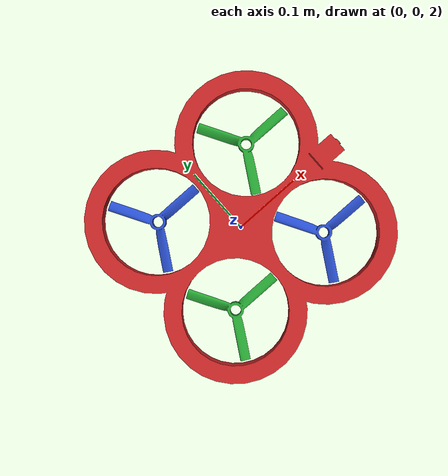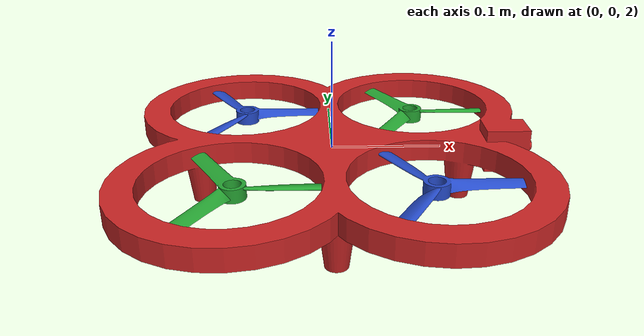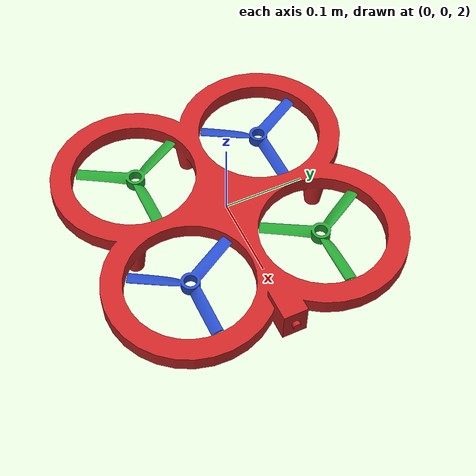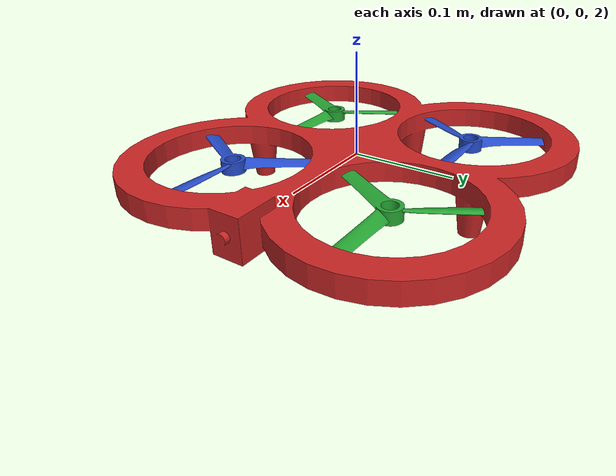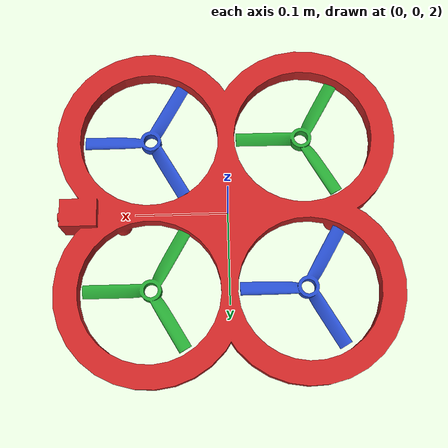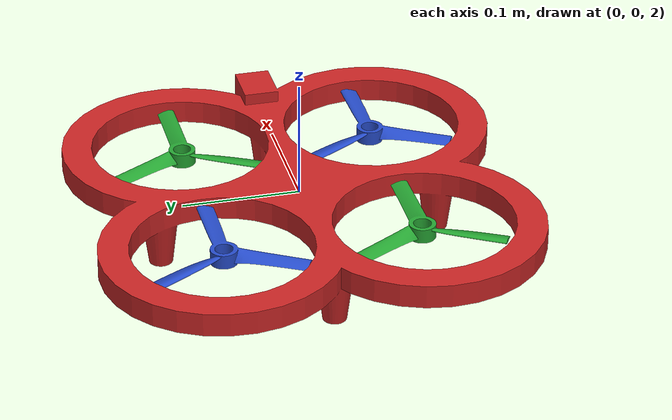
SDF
<?xml version="1.0" ?>
<sdf version="1.8">
  <world name="drone_world">
    <plugin
      filename="ignition-gazebo-physics-system"
      name="ignition::gazebo::systems::Physics">
      <max_step_size>0.02</max_step_size>
      <real_time_factor>10</real_time_factor>
    </plugin>
    <plugin
      filename="gz-sim-scene-broadcaster-system"
      name="gz::sim::systems::SceneBroadcaster">
    </plugin>
    <plugin
      filename="libignition-gazebo-sensors-system"
      name="ignition::gazebo::systems::Sensors">
      <render_engine>ogre2</render_engine>
    </plugin>
    <plugin
      filename="libignition-gazebo-user-commands-system"
      name="ignition::gazebo::systems::UserCommands">
    </plugin>

    <scene>
      <sky></sky>
      <grid>false</grid>
      <ambient>1.0 1.0 1.0</ambient>
      <background>0.8 0.8 0.8</background>
    </scene>

    <light name="sun" type="directional">
      <cast_shadows>true</cast_shadows>
      <pose>0 0 10 0 0 0</pose>
      <diffuse>0.8 0.8 0.8 1</diffuse>
      <specular>0.2 0.2 0.2 1</specular>
      <attenuation>
        <range>1000</range>
        <constant>0.9</constant>
        <linear>0.01</linear>
        <quadratic>0.001</quadratic>
      </attenuation>
      <direction>-0.5 0.1 -0.9</direction>
    </light>

    <model name="ground_plane">
      <static>true</static>
      <link name="link">
        <collision name="collision">
          <geometry>
            <plane>
              <normal>0 0 1</normal>
              <size>100 100</size>
            </plane>
          </geometry>
        </collision>
        <visual name="visual">
          <geometry>
            <plane>
              <normal>0 0 1</normal>
              <size>100 100</size>
            </plane>
          </geometry>
          <material>
            <ambient>0.8 0.8 0.8 1</ambient>
            <diffuse>0.8 0.8 0.8 1</diffuse>
            <specular>0.8 0.8 0.8 1</specular>
          </material>
        </visual>
      </link>
    </model>

    <model name="drone_model">
      <self_collide>true</self_collide>
      <pose>0 0 2 0 0 0</pose>
      <include merge="true">
        <uri>package://d1/models/drone_model</uri>
      </include>

      <plugin filename="libignition-gazebo-imu-system.so"
          name="ignition::gazebo::systems::Imu">
      </plugin>

      <plugin
        filename="libignition-gazebo-joint-state-publisher-system"
        name="ignition::gazebo::systems::JointStatePublisher">
      </plugin>

      <plugin
        filename="libignition-gazebo-pose-publisher-system"
        name="ignition::gazebo::systems::PosePublisher">
        <publish_link_pose>true</publish_link_pose>
        <use_pose_vector_msg>true</use_pose_vector_msg>
        <static_publisher>true</static_publisher>
        <static_update_frequency>1</static_update_frequency>
      </plugin>

      <plugin
        filename="libignition-gazebo-odometry-publisher-system"
        name="ignition::gazebo::systems::OdometryPublisher">
        <odom_frame>drone/odom</odom_frame>
        <robot_base_frame>drone</robot_base_frame>
      </plugin>

      <plugin filename="libignition-gazebo-multicopter-motor-model-system.so"
        name="ignition::gazebo::systems::MulticopterMotorModel">
        <robotNamespace>model/drone_model</robotNamespace>
        <jointName>prop0_joint</jointName>
        <linkName>prop0</linkName>
        <turningDirection>cw</turningDirection>
        <commandSubTopic>command/motor_speed</commandSubTopic>
        <motorNumber>0</motorNumber>
        <motorSpeedPubTopic>motor_speed/0</motorSpeedPubTopic>
        <motorType>velocity</motorType>
      </plugin>

      <plugin filename="libignition-gazebo-multicopter-motor-model-system.so"
        name="ignition::gazebo::systems::MulticopterMotorModel">
        <robotNamespace>model/drone_model</robotNamespace>
        <jointName>prop1_joint</jointName>
        <linkName>prop1</linkName>
        <turningDirection>ccw</turningDirection>
        <commandSubTopic>command/motor_speed</commandSubTopic>
        <motorNumber>1</motorNumber>
        <motorSpeedPubTopic>motor_speed/1</motorSpeedPubTopic>
        <motorType>velocity</motorType>
      </plugin>

      <plugin filename="libignition-gazebo-multicopter-motor-model-system.so"
        name="ignition::gazebo::systems::MulticopterMotorModel">
        <robotNamespace>model/drone_model</robotNamespace>
        <jointName>prop2_joint</jointName>
        <linkName>prop2</linkName>
        <turningDirection>cw</turningDirection>
        <commandSubTopic>command/motor_speed</commandSubTopic>
        <motorNumber>2</motorNumber>
        <motorSpeedPubTopic>motor_speed/2</motorSpeedPubTopic>
        <motorType>velocity</motorType>
      </plugin>

      <plugin filename="libignition-gazebo-multicopter-motor-model-system.so"
        name="ignition::gazebo::systems::MulticopterMotorModel">
        <robotNamespace>model/drone_model</robotNamespace>
        <jointName>prop3_joint</jointName>
        <linkName>prop3</linkName>
        <turningDirection>ccw</turningDirection>
        <commandSubTopic>command/motor_speed</commandSubTopic>
        <motorNumber>3</motorNumber>
        <motorSpeedPubTopic>motor_speed/3</motorSpeedPubTopic>
        <motorType>velocity</motorType>
      </plugin>

      <plugin
        filename="libignition-gazebo-multicopter-control-system.so"
        name="ignition::gazebo::systems::MulticopterVelocityControl">
        <robotNamespace>model/drone_model</robotNamespace>
        <commandSubTopic>cmd_vel</commandSubTopic>
        <motorControlPubTopic>command/motor_speed</motorControlPubTopic>
        <enableSubTopic>velocity_controller/enable</enableSubTopic>
        <comLinkName>frame</comLinkName>
        <velocityGain>2.7 2.7 2.7</velocityGain>
        <attitudeGain>2 3 0.15</attitudeGain>
        <angularRateGain>0.7 0.7 0.7</angularRateGain>
        <maximumLinearAcceleration>1 1 2</maximumLinearAcceleration>
        <maximumLinearVelocity>5 5 5</maximumLinearVelocity>
        <maximumAngularVelocity>3 3 3</maximumAngularVelocity>
        <linearVelocityNoiseMean>0 0 0</linearVelocityNoiseMean>
        <linearVelocityNoiseStdDev>0.1105 0.1261 0.0947</linearVelocityNoiseStdDev>
        <angularVelocityNoiseMean>0 0 0</angularVelocityNoiseMean>
        <angularVelocityNoiseStdDev>0.004 0.004 0.004</angularVelocityNoiseStdDev>
        <rotorConfiguration>
          <rotor>
            <jointName>prop0_joint</jointName>
            <forceConstant>8.54858e-06</forceConstant>
            <momentConstant>0.016</momentConstant>
            <direction>1</direction>
          </rotor>

          <!-- rotors 1 and 2 were direction -1 -->
          <rotor>
            <jointName>prop1_joint</jointName>
            <forceConstant>8.54858e-06</forceConstant>
            <momentConstant>0.016</momentConstant>
            <direction>1</direction>
          </rotor>
          <rotor>
            <jointName>prop2_joint</jointName>
            <forceConstant>8.54858e-06</forceConstant>
            <momentConstant>0.016</momentConstant>
            <direction>1</direction>
          </rotor>
          <rotor>
            <jointName>prop3_joint</jointName>
            <forceConstant>8.54858e-06</forceConstant>
            <momentConstant>0.016</momentConstant>
            <direction>1</direction>
          </rotor>
        </rotorConfiguration>
      </plugin>
    </model>

  </world>
</sdf>

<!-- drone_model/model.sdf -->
<sdf version='1.9'>
    <model name='drone_model'>
        <pose>0 0 0 0 0 0</pose>
        <static>false</static>

        <link name="base_link">
            <must_be_base_link>true</must_be_base_link>
            <self_collide>false</self_collide>
        </link>

        <joint name="base_joint" type="fixed">
            <origin xyz="0 0 0" rpy="0 0 0" />
            <parent>base_link</parent>
            <child>frame</child>
            <pose>0 0 0 0 0 0</pose>
        </joint>

        <link name="frame">
            <self_collide>false</self_collide>
            <pose>0 0 0 0 0 0</pose>
            <inertial>
                <mass>0.5</mass>
                <inertia>
                    <ixx>1.26297701e-05</ixx>
                    <ixy>-5.18156941e-17</ixy>
                    <ixz>-1.37610761e-08</ixz>
                    <iyy>1.36983673e-05</iyy>
                    <iyz>3.96565331e-15</iyz>
                    <izz>2.61209100e-05</izz>
                </inertia>
            </inertial>
            <collision name="frame_collision">
                <max_contacts>4</max_contacts>
                <geometry>
                    <mesh>
                        <scale>0.001 0.001 0.001</scale>
                        <uri>package://d1/meshes/body.stl</uri>
                    </mesh>
                </geometry>
                <surface>
                    <friction>
                        <ode>
                            <mu>1</mu>
                            <mu2>1</mu2>
                        </ode>
                    </friction>
                    <contact>
                        <colliide_without_contact>true</colliide_without_contact>
                    </contact>
                </surface>
            </collision>
            <visual name="frame_visual">
                <cast_shadows>false</cast_shadows>
                <geometry>
                    <mesh>
                        <scale>0.001 0.001 0.001</scale>
                        <uri>package://d1/meshes/body.stl</uri>
                    </mesh>
                </geometry>
                <material>
                    <diffuse>1 0 0 1</diffuse>
                    <script>
                        <name>Gazebo/Red</name>
                        <uri>file://media/materials/scripts/gazebo.material</uri>
                    </script>
                </material>
            </visual>

            <sensor name="camera" type="camera">
                <pose>0.15 0 0 0 0 0</pose>
                <always_on>1</always_on>
                <update_rate>20</update_rate>
                <camera name="camera">
                    <horizontal_fov>1.0472</horizontal_fov>
                    <lens>
                        <intrinsics>
                            <fx>1108.5</fx>
                            <fy>1108.5</fy>
                            <cx>640.5</cx>
                            <cy>480.5</cy>
                            <s>0</s>
                        </intrinsics>
                    </lens>
                    <distortion>
                        <k1>0.0</k1>
                        <k2>0.0</k2>
                        <k3>0.0</k3>
                        <p1>0.0</p1>
                        <p2>0.0</p2>
                        <center>0.5 0.5</center>
                    </distortion>
                    <image>
                        <width>1260</width>
                        <height>720</height>
                        <format>R8G8B8</format>
                    </image>
                    <clip>
                        <near>0.01</near>
                        <far>300</far>
                    </clip>
                    <noise>
                        <type>gaussian</type>
                        <mean>0</mean>
                        <stddev>0.007</stddev>
                    </noise>
                </camera>
            </sensor>

            <sensor name="imu_sensor" type="imu">
                <always_on>1</always_on>
                <update_rate>10</update_rate>
                <visualize>true</visualize>
                <topic>model/drone_model/imu</topic>
            </sensor>
        </link>

        <link name="prop0">
            <pose>0.0835 0.0835 0 0 0 0</pose>
            <inertial>
                <mass>0.15</mass>
                <inertia>
                    <ixx>2.28759986e-10</ixx>
                    <ixy>-2.13167562e-18</ixy>
                    <ixz>-1.90163023e-19</ixz>
                    <iyy>2.28759967e-10</iyy>
                    <iyz>1.98727288e-19</iyz>
                    <izz>4.52746349e-10</izz>
                </inertia>
            </inertial>
            <collision name="prop0_collision">
                <max_contacts>4</max_contacts>
                <geometry>
                    <mesh>
                        <scale>0.0019 0.0019 0.0019</scale>
                        <uri>package://d1/meshes/prop_cw.stl</uri>
                    </mesh>
                </geometry>
                <surface>
                    <friction>
                        <ode>
                            <mu>1</mu>
                            <mu2>1</mu2>
                        </ode>
                    </friction>
                    <contact>
                        <colliide_without_contact>true</colliide_without_contact>
                    </contact>
                </surface>
            </collision>
            <visual name="prop0_visual">
                <cast_shadows>false</cast_shadows>
                <geometry>
                    <mesh>
                        <scale>0.0019 0.0019 0.0019</scale>
                        <uri>package://d1/meshes/prop_cw.stl</uri>
                    </mesh>
                </geometry>
                <material>
                    <diffuse>0 1 0 1</diffuse>
                    <script>
                        <name>Gazebo/Green</name>
                        <uri>file://media/materials/scripts/gazebo.material</uri>
                    </script>
                </material>
            </visual>
        </link>

        <link name="prop1">
            <pose>0.0835 -0.0835 0 0 0 0</pose>
            <inertial>
                <mass>0.15</mass>
                <inertia>
                    <ixx>2.28759986e-10</ixx>
                    <ixy>3.92098607e-19</ixy>
                    <ixz>-1.94870584e-19</ixz>
                    <iyy>2.28759963e-10</iyy>
                    <iyz>-3.11172300e-19</iyz>
                    <izz>4.52746346e-10</izz>
                </inertia>
            </inertial>
            <collision name="prop1_collision">
                <max_contacts>4</max_contacts>
                <geometry>
                    <mesh>
                        <scale>0.0019 0.0019 0.0019</scale>
                        <uri>package://d1/meshes/prop_ccw.stl</uri>
                    </mesh>
                </geometry>
                <surface>
                    <friction>
                        <ode>
                            <mu>1</mu>
                            <mu2>1</mu2>
                        </ode>
                    </friction>
                    <contact>
                        <colliide_without_contact>true</colliide_without_contact>
                    </contact>
                </surface>
            </collision>
            <visual name="prop1_visual">
                <cast_shadows>false</cast_shadows>
                <geometry>
                    <mesh>
                        <scale>0.0019 0.0019 0.0019</scale>
                        <uri>package://d1/meshes/prop_ccw.stl</uri>
                    </mesh>
                </geometry>
                <material>
                    <diffuse>0 0 1 1</diffuse>
                    <script>
                        <name>Gazebo/Blue</name>
                        <uri>file://media/materials/scripts/gazebo.material</uri>
                    </script>
                </material>
            </visual>
        </link>

        <link name="prop2">
            <pose>-0.0835 0.0835 0 0 0 0</pose>
            <inertial>
                <mass>0.15</mass>
                <inertia>
                    <ixx>2.28759986e-10</ixx>
                    <ixy>3.92098607e-19</ixy>
                    <ixz>-1.94870584e-19</ixz>
                    <iyy>2.28759963e-10</iyy>
                    <iyz>-3.11172300e-19</iyz>
                    <izz>4.52746346e-10</izz>
                </inertia>
            </inertial>
            <collision name="prop2_collision">
                <max_contacts>4</max_contacts>
                <geometry>
                    <mesh>
                        <scale>0.0019 0.0019 0.0019</scale>
                        <uri>package://d1/meshes/prop_ccw.stl</uri>
                    </mesh>
                </geometry>
                <surface>
                    <friction>
                        <ode>
                            <mu>1</mu>
                            <mu2>1</mu2>
                        </ode>
                    </friction>
                    <contact>
                        <colliide_without_contact>true</colliide_without_contact>
                    </contact>
                </surface>
            </collision>
            <visual name="prop2_visual">
                <cast_shadows>false</cast_shadows>
                <geometry>
                    <mesh>
                        <scale>0.0019 0.0019 0.0019</scale>
                        <uri>package://d1/meshes/prop_ccw.stl</uri>
                    </mesh>
                </geometry>
                <material>
                    <diffuse>0 0 1 1</diffuse>
                    <script>
                        <name>Gazebo/Blue</name>
                        <uri>file://media/materials/scripts/gazebo.material</uri>
                    </script>
                </material>
            </visual>
        </link>

        <link name="prop3">
            <pose>-0.0835 -0.0835 0 0 0 0</pose>
            <inertial>
                <mass>0.15</mass>
                <inertia>
                    <ixx>2.28759986e-10</ixx>
                    <ixy>-2.13167562e-18</ixy>
                    <ixz>-1.90163023e-19</ixz>
                    <iyy>2.28759967e-10</iyy>
                    <iyz>1.98727288e-19</iyz>
                    <izz>4.52746349e-10</izz>
                </inertia>
            </inertial>
            <collision name="prop3_collision">
                <max_contacts>4</max_contacts>
                <geometry>
                    <mesh>
                        <scale>0.0019 0.0019 0.0019</scale>
                        <uri>package://d1/meshes/prop_cw.stl</uri>
                    </mesh>
                </geometry>
                <surface>
                    <friction>
                        <ode>
                            <mu>1</mu>
                            <mu2>1</mu2>
                        </ode>
                    </friction>
                    <contact>
                        <colliide_without_contact>true</colliide_without_contact>
                    </contact>
                </surface>
            </collision>
            <visual name="prop3_visual">
                <cast_shadows>false</cast_shadows>
                <geometry>
                    <mesh>
                        <scale>0.0019 0.0019 0.0019</scale>
                        <uri>package://d1/meshes/prop_cw.stl</uri>
                    </mesh>
                </geometry>
                <material>
                    <diffuse>0 1 0 1</diffuse>
                    <script>
                        <name>Gazebo/Green</name>
                        <uri>file://media/materials/scripts/gazebo.material</uri>
                    </script>
                </material>
            </visual>
        </link>
        <joint name="prop0_joint" type="revolute">
            <parent>frame</parent>
            <child>prop0</child>
            <axis><xyz>0 0 1</xyz></axis>
            <pose relative_to='prop0'/>
        </joint>
        <joint name="prop1_joint" type="revolute">
            <parent>frame</parent>
            <child>prop1</child>
            <axis><xyz>0 0 1</xyz></axis>
            <pose relative_to='prop1'/>
        </joint>
        <joint name="prop2_joint" type="revolute">
            <parent>frame</parent>
            <child>prop2</child>
            <axis><xyz>0 0 1</xyz></axis>
            <pose relative_to='prop2'/>
        </joint>
        <joint name="prop3_joint" type="revolute">
            <parent>frame</parent>
            <child>prop3</child>
            <axis><xyz>0 0 1</xyz></axis>
            <pose relative_to='prop3'/>
        </joint>
    </model>
</sdf>
